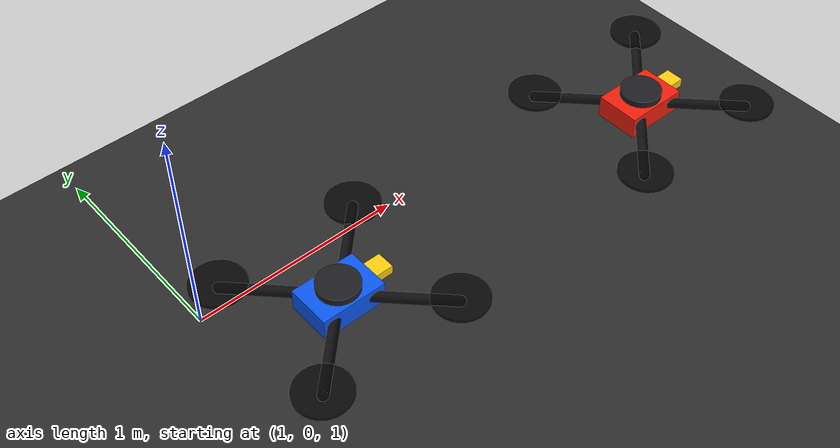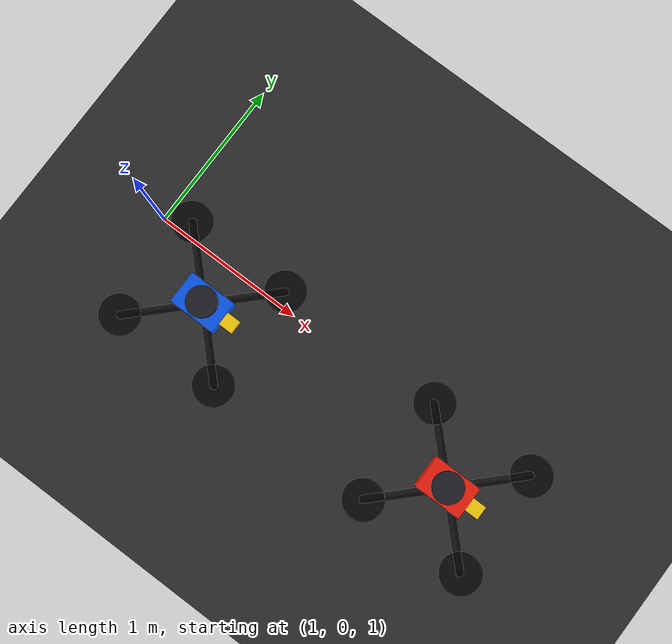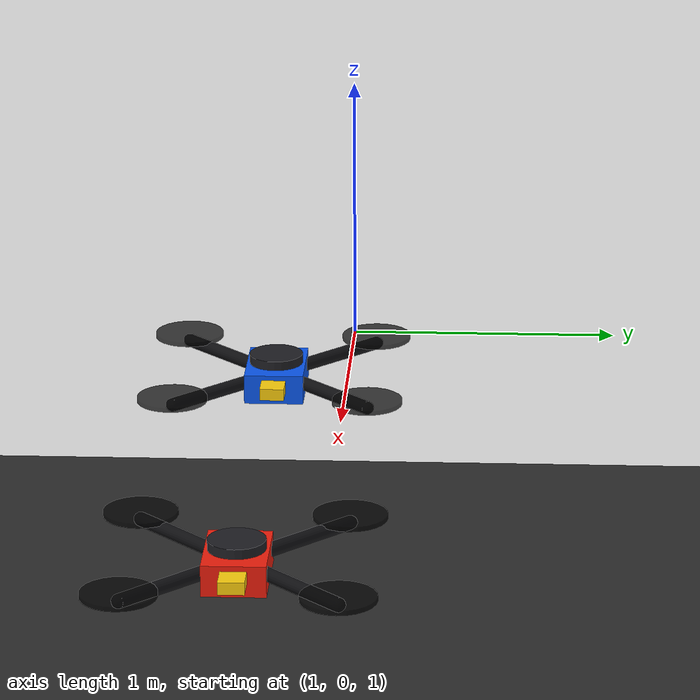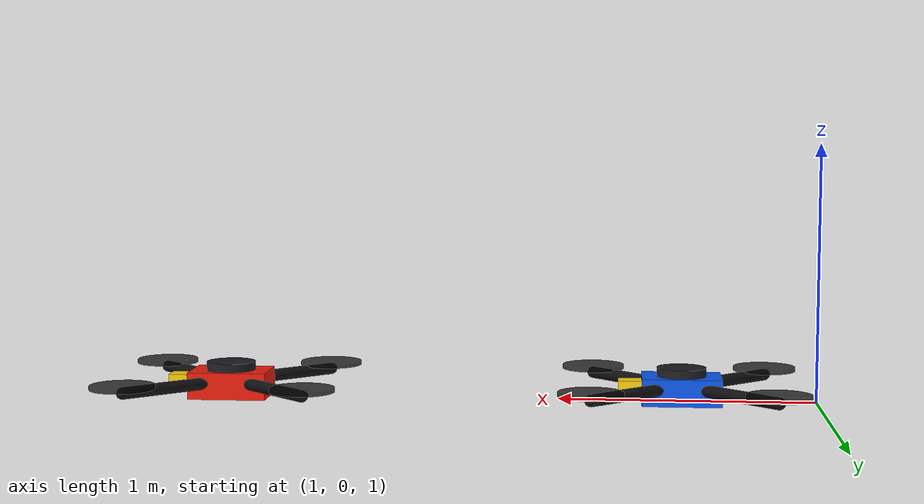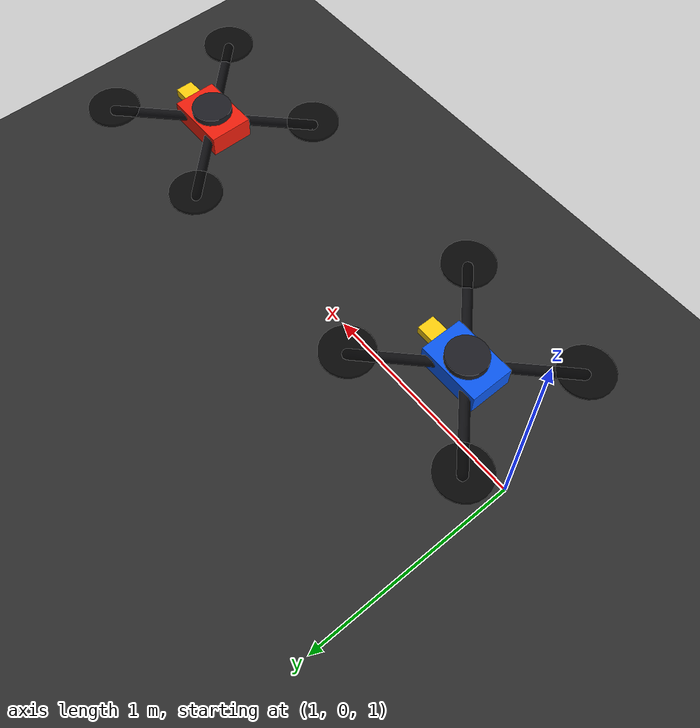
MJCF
<mujoco model="dual_quaternion_leader_follower">
  <compiler angle="radian" autolimits="true"/>
  <option timestep="0.0041666667" gravity="0 0 -9.81" integrator="implicitfast" iterations="20"/>

  <visual>
    <global offwidth="1280" offheight="720"/>
    <quality shadowsize="2048"/>
  </visual>

  <default>
    <geom friction="0.7 0.05 0.01" contype="1" conaffinity="1"/>
  </default>

  <asset>
    <texture name="grid" type="2d" builtin="checker" width="512" height="512" rgb1="0.14 0.14 0.14" rgb2="0.22 0.22 0.22"/>
    <material name="gridmat" texture="grid" texrepeat="25 25"/>
    <material name="leader_mat" rgba="0.04 0.35 0.95 1"/>
    <material name="follower_mat" rgba="0.95 0.12 0.05 1"/>
    <material name="arm_mat" rgba="0.06 0.06 0.07 1"/>
    <material name="rotor_mat" rgba="0.03 0.03 0.03 0.75"/>
    <material name="nose_mat" rgba="1 0.82 0.05 1"/>
    <material name="hub_mat" rgba="0.12 0.12 0.14 1"/>
  </asset>

  <worldbody>
    <light name="sun" pos="0 -2 8" dir="0 0 -1" directional="true" diffuse="1 1 1" specular="0.25 0.25 0.25"/>
    <light name="fill" pos="4 -4 5" dir="-1 1 -1" directional="true" diffuse="0.5 0.5 0.5"/>
    <geom name="floor" type="plane" size="20 20 0.1" material="gridmat"/>

    <!-- Recognizable X-frame quadrotor: leader -->
    <body name="drone0" pos="1.51 -0.27 1.0">
      <freejoint name="drone0_free"/>
      <geom name="drone0_body" type="box" size="0.16 0.11 0.055" mass="0.8" material="leader_mat"/>
      <geom name="drone0_hub" type="cylinder" pos="0 0 0.065" size="0.10 0.025" mass="0" material="hub_mat" contype="0" conaffinity="0"/>
      <geom name="drone0_nose" type="box" pos="0.19 0 0.015" size="0.065 0.045 0.022" mass="0" material="nose_mat" contype="0" conaffinity="0"/>

      <geom name="drone0_arm0" type="capsule" fromto="0 0 0.01 0.36 0.36 0.01" size="0.025" mass="0" material="arm_mat" contype="0" conaffinity="0"/>
      <geom name="drone0_arm1" type="capsule" fromto="0 0 0.01 -0.36 0.36 0.01" size="0.025" mass="0" material="arm_mat" contype="0" conaffinity="0"/>
      <geom name="drone0_arm2" type="capsule" fromto="0 0 0.01 -0.36 -0.36 0.01" size="0.025" mass="0" material="arm_mat" contype="0" conaffinity="0"/>
      <geom name="drone0_arm3" type="capsule" fromto="0 0 0.01 0.36 -0.36 0.01" size="0.025" mass="0" material="arm_mat" contype="0" conaffinity="0"/>

      <geom name="drone0_rotor0" type="cylinder" pos="0.36 0.36 0.035" size="0.13 0.008" mass="0" material="rotor_mat" contype="0" conaffinity="0"/>
      <geom name="drone0_rotor1" type="cylinder" pos="-0.36 0.36 0.035" size="0.13 0.008" mass="0" material="rotor_mat" contype="0" conaffinity="0"/>
      <geom name="drone0_rotor2" type="cylinder" pos="-0.36 -0.36 0.035" size="0.13 0.008" mass="0" material="rotor_mat" contype="0" conaffinity="0"/>
      <geom name="drone0_rotor3" type="cylinder" pos="0.36 -0.36 0.035" size="0.13 0.008" mass="0" material="rotor_mat" contype="0" conaffinity="0"/>
    </body>

    <!-- Recognizable X-frame quadrotor: follower -->
    <body name="drone1" pos="3.36 -0.27 1.0">
      <freejoint name="drone1_free"/>
      <geom name="drone1_body" type="box" size="0.16 0.11 0.055" mass="0.8" material="follower_mat"/>
      <geom name="drone1_hub" type="cylinder" pos="0 0 0.065" size="0.10 0.025" mass="0" material="hub_mat" contype="0" conaffinity="0"/>
      <geom name="drone1_nose" type="box" pos="0.19 0 0.015" size="0.065 0.045 0.022" mass="0" material="nose_mat" contype="0" conaffinity="0"/>

      <geom name="drone1_arm0" type="capsule" fromto="0 0 0.01 0.36 0.36 0.01" size="0.025" mass="0" material="arm_mat" contype="0" conaffinity="0"/>
      <geom name="drone1_arm1" type="capsule" fromto="0 0 0.01 -0.36 0.36 0.01" size="0.025" mass="0" material="arm_mat" contype="0" conaffinity="0"/>
      <geom name="drone1_arm2" type="capsule" fromto="0 0 0.01 -0.36 -0.36 0.01" size="0.025" mass="0" material="arm_mat" contype="0" conaffinity="0"/>
      <geom name="drone1_arm3" type="capsule" fromto="0 0 0.01 0.36 -0.36 0.01" size="0.025" mass="0" material="arm_mat" contype="0" conaffinity="0"/>

      <geom name="drone1_rotor0" type="cylinder" pos="0.36 0.36 0.035" size="0.13 0.008" mass="0" material="rotor_mat" contype="0" conaffinity="0"/>
      <geom name="drone1_rotor1" type="cylinder" pos="-0.36 0.36 0.035" size="0.13 0.008" mass="0" material="rotor_mat" contype="0" conaffinity="0"/>
      <geom name="drone1_rotor2" type="cylinder" pos="-0.36 -0.36 0.035" size="0.13 0.008" mass="0" material="rotor_mat" contype="0" conaffinity="0"/>
      <geom name="drone1_rotor3" type="cylinder" pos="0.36 -0.36 0.035" size="0.13 0.008" mass="0" material="rotor_mat" contype="0" conaffinity="0"/>
    </body>
  </worldbody>
</mujoco>
